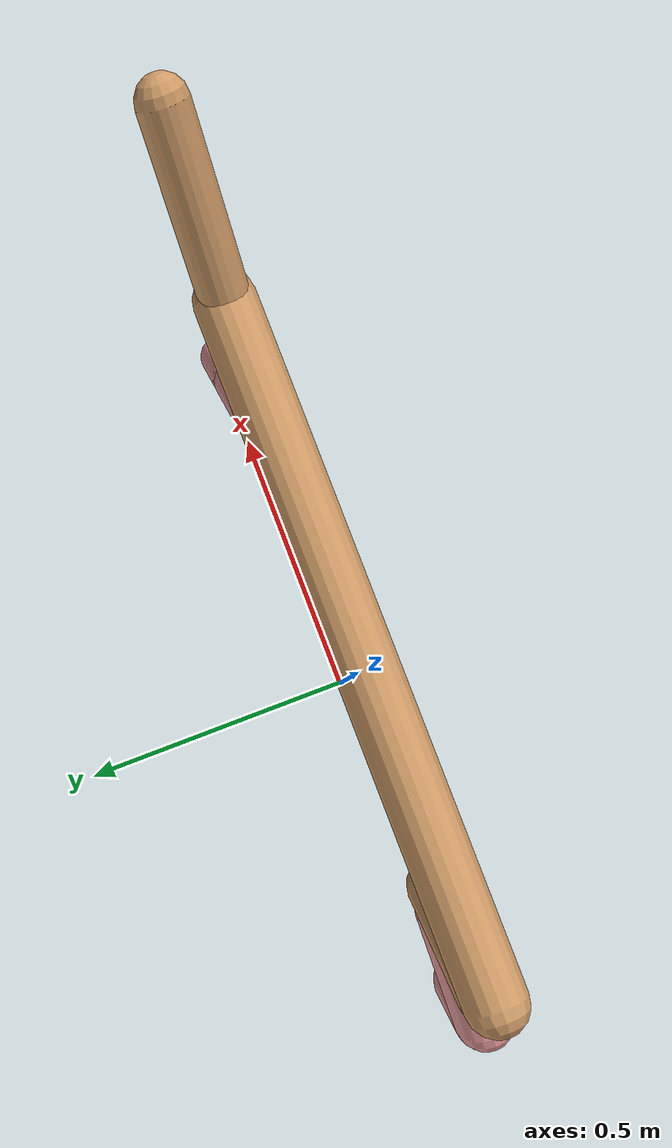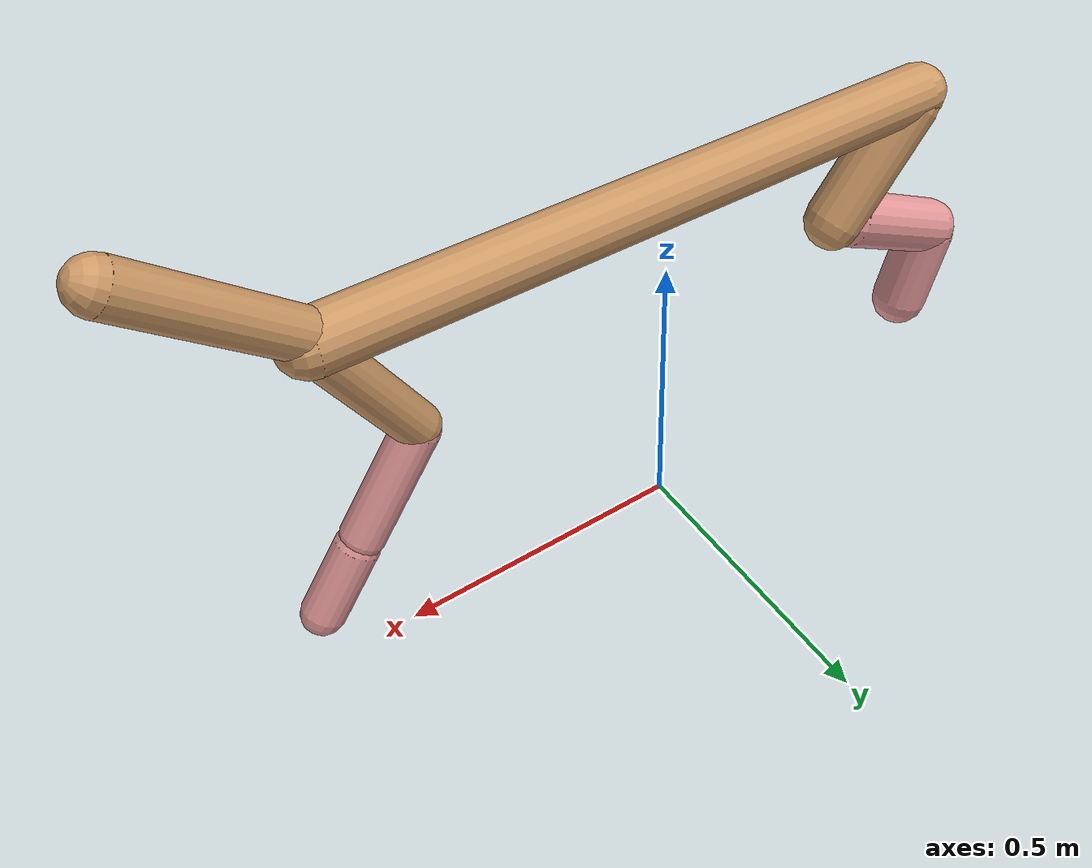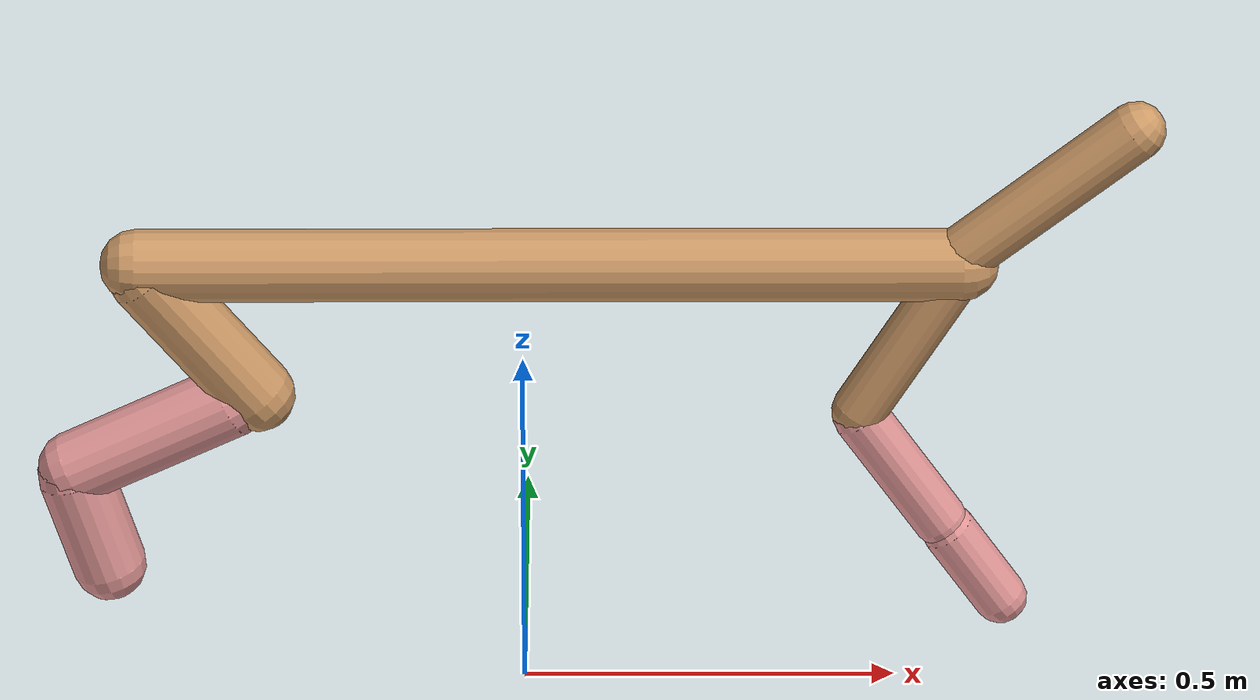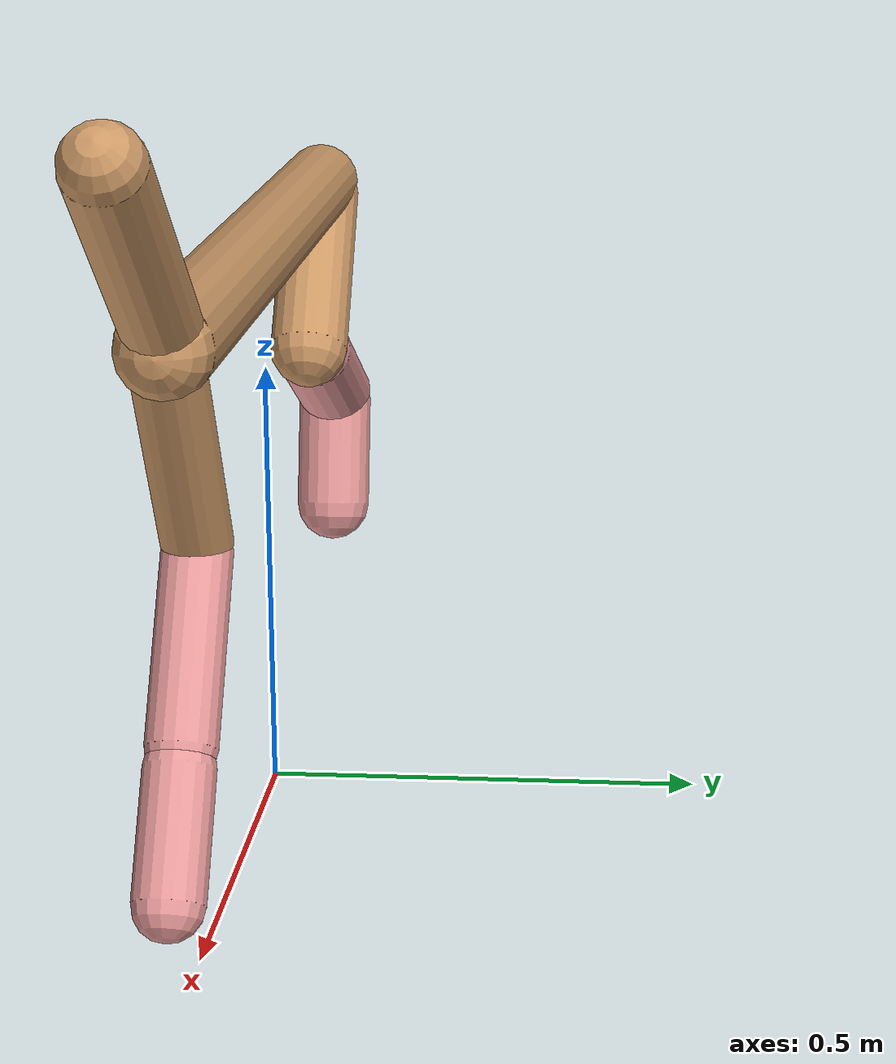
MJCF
<mujoco model="cheetah">
  <compiler angle="radian" coordinate="local" inertiafromgeom="true" settotalmass="14" />
  <default>
    <joint armature=".1" damping=".01" limited="true" solimplimit="0 .8 .03" solreflimit=".02 1" stiffness="8" />
    <geom conaffinity="0" condim="3" contype="1" friction="0.8 .1 .1" rgba="0.8 0.6 .4 1" solimp="0.0 0.8 0.01" solref="0.02 1" />
    <motor ctrllimited="true" ctrlrange="-1 1" />
  </default>
  <size nstack="300000" nuser_geom="1" />
  <option gravity="0 0 -9.81" timestep="0.01" />
  <worldbody>
    <body name="torso" pos="0.0 0.0 0.6432819666420765">
      <joint armature="0" axis="1 0 0" damping="0" limited="false" name="ignorex" pos="0 0 0" stiffness="0" type="slide" />
      <joint armature="0" axis="0 0 1" damping="0" limited="false" name="ignorez" pos="0 0 0" stiffness="0" type="slide" />
      <joint armature="0" axis="0 1 0" damping="0" limited="false" name="ignorey" pos="0 0 0" stiffness="0" type="hinge" />
      <geom fromto="-0.5 0.0 0.0 0.5699462593823177 0.0 0.0" name="torso" size="0.04776481889435258" type="capsule" />
      <geom axisangle="0 1 0 .87" name="head" pos="0.6699462593823177 0.0 0.1" size="0.03858797059509496 0.15" type="capsule" />

      <body name="bthigh" pos="-.5 0 0">
        <joint axis="0 1 0" damping="6" name="bthigh" pos="0 0 0" range="-.52 1.05" stiffness="240" type="hinge" />
        <geom axisangle="0 1 0 -3.8" name="bthigh" pos="0.08117213236469481 0.0 -0.10552377207410325" size="0.04965478643561224 0.11412000108204307" type="capsule" />
        <body name="bshin" pos="0.12234426472938961 0.0 -0.2010475441482065">
          <joint axis="0 1 0" damping="4.5" name="bshin" pos="0 0 0" range="-.785 .785" stiffness="180" type="hinge" />
          <geom axisangle="0 1 0 -2.03" name="bshin" pos="-0.11142767859627381 0.0 -0.055713839298136905" rgba="0.9 0.6 0.6 1" size="0.04965478643561224 0.118055173533148" type="capsule" />
          <body name="bfoot" pos="-0.22285535719254762 0.0 -0.11142767859627381">
            <joint axis="0 1 0" damping="3" name="bfoot" pos="0 0 0" range="-.4 .785" stiffness="120" type="hinge" />
            <geom axisangle="0 1 0 -.27" name="bfoot" pos="0.024085063144361978 0.0 -0.07787503750010373" rgba="0.9 0.6 0.6 1" size="0.04965478643561224 0.07398124208077275" type="capsule" />
            <inertial mass="10" />
          </body>
        </body>
      </body>
      <body name="fthigh" pos="0.5699462593823177 0.0 0.0">
        <joint axis="0 1 0" damping="4.5" name="fthigh" pos="0 0 0" range="-1.5 0.8" stiffness="180" type="hinge" />
        <geom axisangle="0 1 0 .52" name="fthigh" pos="-0.06602411057187144 0.0 -0.1131841895517796" size="0.03620847110021546 0.1251093112587826" type="capsule" />
        <body name="fshin" pos="-0.13204822114374287 0.0 -0.2263683791035592">
          <joint axis="0 1 0" damping="3" name="fshin" pos="0 0 0" range="-1.2 1.1" stiffness="120" type="hinge" />
          <geom axisangle="0 1 0 -.6" name="fshin" pos="0.06131795553038546 0.0 -0.08490178458053371" rgba="0.9 0.6 0.6 1" size="0.03620847110021546 0.09971118040173652" type="capsule" />
          <body name="ffoot" pos="0.12263591106077092 0.0 -0.16980356916106742">
            <joint axis="0 1 0" damping="1.5" name="ffoot" pos="0 0 0" range="-3.1 -0.3" stiffness="60" type="hinge" />
            <geom axisangle="0 1 0 -.6" name="ffoot" pos="0.04275423692762881 0.0 -0.06650659077631149" rgba="0.9 0.6 0.6 1" size="0.03620847110021546 0.06584700592567506" type="capsule" />
            <inertial mass="10" />
          </body>
        </body>
      </body>
    </body>
  </worldbody>
  <actuator>
    <motor gear="120" joint="bthigh" name="bthigh" />
    <motor gear="90" joint="bshin" name="bshin" />
    <motor gear="60" joint="bfoot" name="bfoot" />
    <motor gear="120" joint="fthigh" name="fthigh" />
    <motor gear="60" joint="fshin" name="fshin" />
    <motor gear="30" joint="ffoot" name="ffoot" />
  </actuator>
</mujoco>
